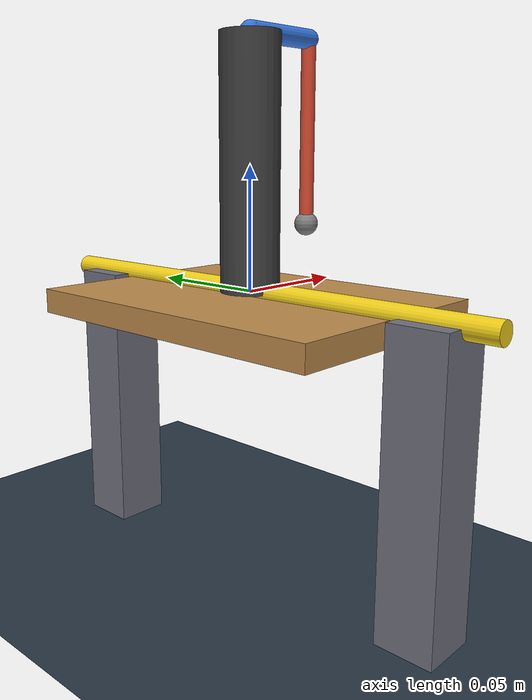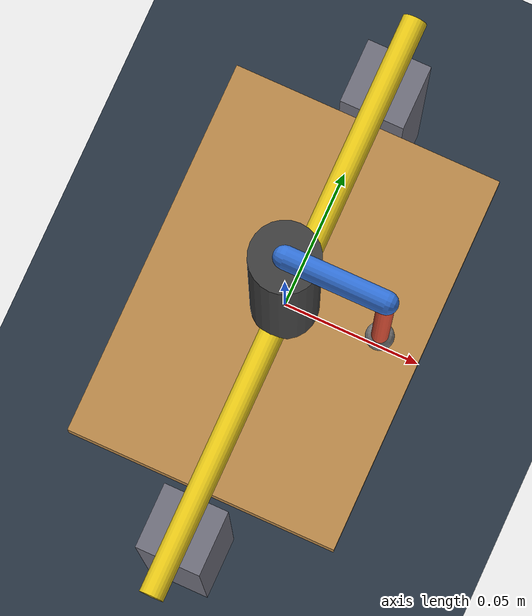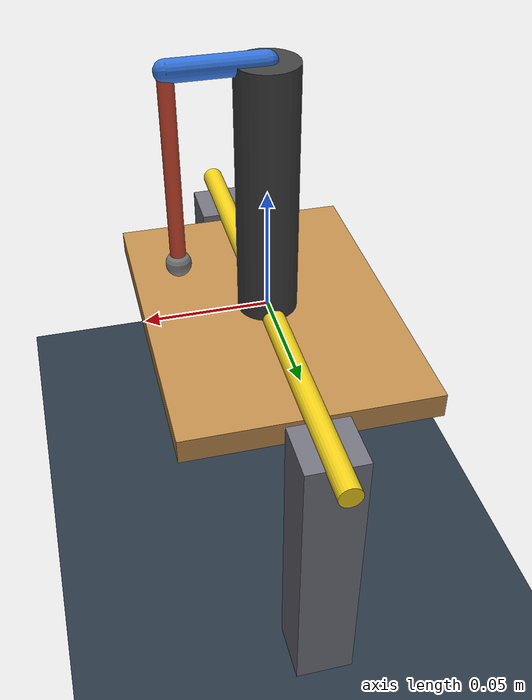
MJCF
<mujoco model="furuta">
  <compiler angle="radian" autolimits="true"/>
  <option timestep="0.0005" integrator="RK4" gravity="0 0 -9.81"/>

  <visual>
    <headlight diffuse="0.6 0.6 0.6" ambient="0.4 0.4 0.4"/>
  </visual>

  <asset>
    <texture name="sky" type="skybox" builtin="gradient" rgb1=".5 .6 .7" rgb2=".1 .1 .15"
             width="256" height="256"/>
    <texture name="grid" type="2d" builtin="checker" rgb1=".2 .27 .34" rgb2=".12 .16 .2"
             width="300" height="300"/>
    <material name="grid" texture="grid" texrepeat="10 10" reflectance="0.1"/>
  </asset>

  <default>
    <geom contype="0" conaffinity="0"/>   <!-- no collisions; this is a kinematic model -->
  </default>

  <worldbody>
    <light pos="0.3 0.3 1.2" dir="-0.3 -0.3 -1"/>
    <light pos="0 0 1.2" dir="0 0 -1"/>

    <!-- WORLD (fixed) reference: floor + the tilt bearings + a bright marker for the TILT AXIS -->
    <geom name="floor" type="plane" size="0.6 0.6 0.05" pos="0 0 -0.12" material="grid"/>
    <!-- fixed bearing blocks the board axle pivots in (these do NOT tilt) -->
    <geom type="box" size="0.012 0.012 0.06" pos="0  0.085 -0.06" rgba=".45 .45 .5 1"/>
    <geom type="box" size="0.012 0.012 0.06" pos="0 -0.085 -0.06" rgba=".45 .45 .5 1"/>
    <!-- *** TILT AXIS *** : bright yellow axle along y at the pivot — the board rotates about this -->
    <geom name="tilt_axis" type="cylinder" fromto="0 -0.11 0  0 0.11 0" size="0.0045"
          rgba=".95 .82 .1 1"/>

    <body name="board" pos="0 0 0">
      <joint name="tilt" type="hinge" axis="0 1 0" damping="0.5" range="-0.7 0.7"/>
      <inertial pos="0 0 0.05" mass="0.2" diaginertia="2e-3 2e-3 2e-3"/>
      <!-- the tilting platform/plate (a real base) + the stand the Furuta rig mounts on -->
      <geom type="box" size="0.05 0.07 0.005" pos="0 0 -0.006" rgba=".75 .55 .3 1"/>
      <geom type="cylinder" size="0.012 0.05" pos="0 0 0.05" rgba=".25 .25 .25 1"/>

      <body name="arm" pos="0 0 0.10">
        <joint name="arm" type="hinge" axis="0 0 1" damping="9.4e-4" frictionloss="6.0e-3"/>
        <!-- arm own z-inertia = J_ARM (rotor + arm mass); mass on-axis so it only sets Izz -->
        <inertial pos="0 0 0" mass="0.015" diaginertia="6.84e-5 6.84e-5 6.84e-5"/>
        <geom type="capsule" fromto="0 0 0 0.035 0 0" size="0.004" rgba=".2 .45 .85 1"/>

        <body name="pole" pos="0.035 0 0">
          <!-- axis = -x so +V -> +theta_dot, matching the measured firmware convention
               (sign_check: +V -> +theta_dot). Keeps sim<->firmware obs/action mapping 1:1. -->
          <joint name="pole" type="hinge" axis="-1 0 0" damping="5.06e-5" frictionloss="0.35e-3"/>
          <!-- CoM L_P below pivot; about-CoM Ixx=8.4e-6 -> about-pivot 4.64e-5 -> alpha=214 -->
          <inertial pos="0 0 -0.0375" mass="0.027" diaginertia="8.4e-6 8.4e-6 1e-7"/>
          <geom type="capsule" fromto="0 0 0 0 0 -0.075" size="0.003" rgba=".85 .3 .2 1"/>
          <site name="tip" pos="0 0 -0.075" size="0.005"/>
        </body>
      </body>
    </body>
  </worldbody>

  <actuator>
    <!-- ctrl = motor voltage [V]; gear = KM so applied torque = KM*ctrl -->
    <motor name="motor" joint="arm" gear="0.0127" ctrlrange="-6 6"/>
    <!-- tilt: stiff position servo tracking beta_ref [rad] (board/LX-16A). ctrl = beta_ref. -->
    <position name="tilt" joint="tilt" kp="50" ctrlrange="-0.6 0.6"/>
  </actuator>
</mujoco>
